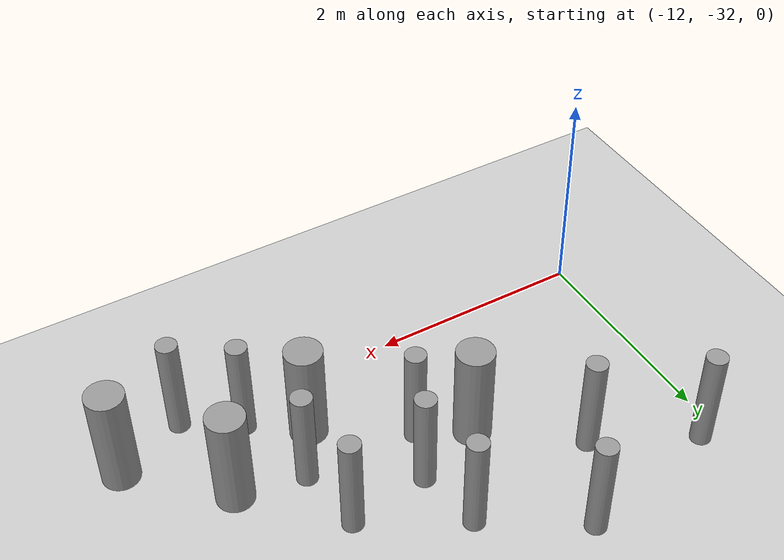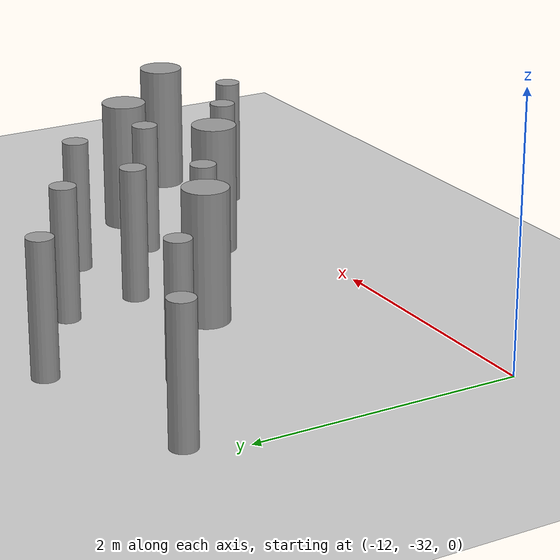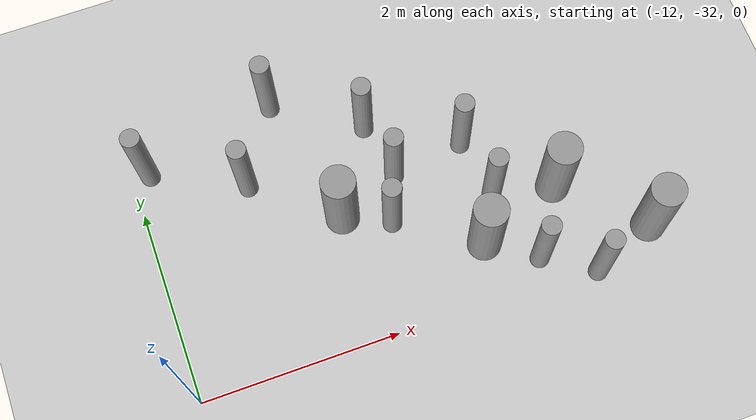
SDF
<sdf version="1.6">
 <world name="default">
  <model name="ground_plane">
   <static>1</static>
   <link name="link">
    <collision name="collision">
     <geometry><plane><normal>0 0 1</normal><size>100 100</size></plane></geometry>
     <surface><friction><ode><mu>100</mu><mu2>50</mu2></ode></friction></surface>
    </collision>
    <visual name="visual">
     <cast_shadows>0</cast_shadows>
     <geometry><plane><normal>0 0 1</normal><size>100 100</size></plane></geometry>
     <material>
      <script><uri>file://media/materials/scripts/gazebo.material</uri><name>Gazebo/Grey</name></script>
     </material>
    </visual>
   </link>
  </model>
  <model name="cyl_wall_clone_clone_1_clone_clone_0_clone_0">
   <link name="link_0">
    <pose>-2.73893 -0.366465 0 0 -0 0</pose>
    <inertial>
     <mass>0.0374993</mass>
     <inertia>
      <ixx>0.00321281</ixx>
      <ixy>0</ixy>
      <ixz>0</ixz>
      <iyy>0.00321281</iyy>
      <iyz>0</iyz>
      <izz>0.000175774</izz>
     </inertia>
    </inertial>
    <visual name="visual">
     <geometry><cylinder><radius>0.0968661</radius><length>1</length></cylinder></geometry>
     <material>
      <lighting>1</lighting>
      <script><uri>file://media/materials/scripts/gazebo.material</uri><name>Gazebo/Grey</name></script>
      <ambient>0.3 0.3 0.3 1</ambient>
      <diffuse>0.7 0.7 0.7 1</diffuse>
      <specular>0.01 0.01 0.01 1</specular>
      <emissive>0 0 0 1</emissive>
     </material>
    </visual>
    <collision name="collision">
     <geometry><cylinder><radius>0.096866</radius><length>1</length></cylinder></geometry>
     <surface>
      <friction>
       <ode><mu>1</mu><mu2>1</mu2><fdir1>0 0 0</fdir1><slip1>0</slip1><slip2>0</slip2></ode>
       <torsional>
        <coefficient>1</coefficient>
        <patch_radius>0</patch_radius>
        <surface_radius>0</surface_radius>
        <use_patch_radius>1</use_patch_radius>
        <ode><slip>0</slip></ode>
       </torsional>
      </friction>
      <bounce><restitution_coefficient>0</restitution_coefficient><threshold>1e+06</threshold></bounce>
      <contact>
       <collide_without_contact>0</collide_without_contact>
       <collide_without_contact_bitmask>1</collide_without_contact_bitmask>
       <collide_bitmask>1</collide_bitmask>
       <ode>
        <soft_cfm>0</soft_cfm>
        <soft_erp>0.2</soft_erp>
        <kp>1e+13</kp>
        <kd>1</kd>
        <max_vel>0.01</max_vel>
        <min_depth>0</min_depth>
       </ode>
       <bullet>
        <split_impulse>1</split_impulse>
        <split_impulse_penetration_threshold>-0.01</split_impulse_penetration_threshold>
        <soft_cfm>0</soft_cfm>
        <soft_erp>0.2</soft_erp>
        <kp>1e+13</kp>
        <kd>1</kd>
       </bullet>
      </contact>
     </surface>
    </collision>
   </link>
   <link name="link_0_clone">
    <pose>-1.73893 0.61877 0 0 -0 0</pose>
    <inertial>
     <mass>0.0374993</mass>
     <inertia>
      <ixx>0.00321281</ixx>
      <ixy>0</ixy>
      <ixz>0</ixz>
      <iyy>0.00321281</iyy>
      <iyz>0</iyz>
      <izz>0.000175774</izz>
     </inertia>
    </inertial>
    <visual name="visual">
     <geometry><cylinder><radius>0.0968661</radius><length>1</length></cylinder></geometry>
     <material>
      <lighting>1</lighting>
      <script><uri>file://media/materials/scripts/gazebo.material</uri><name>Gazebo/Grey</name></script>
      <ambient>0.3 0.3 0.3 1</ambient>
      <diffuse>0.7 0.7 0.7 1</diffuse>
      <specular>0.01 0.01 0.01 1</specular>
      <emissive>0 0 0 1</emissive>
      <shader type="pixel"/>
     </material>
    </visual>
    <collision name="collision">
     <geometry><cylinder><radius>0.096866</radius><length>1</length></cylinder></geometry>
     <surface>
      <friction>
       <ode><mu>1</mu><mu2>1</mu2><fdir1>0 0 0</fdir1><slip1>0</slip1><slip2>0</slip2></ode>
       <torsional>
        <coefficient>1</coefficient>
        <patch_radius>0</patch_radius>
        <surface_radius>0</surface_radius>
        <use_patch_radius>1</use_patch_radius>
        <ode><slip>0</slip></ode>
       </torsional>
      </friction>
      <bounce><restitution_coefficient>0</restitution_coefficient><threshold>1e+06</threshold></bounce>
      <contact>
       <collide_without_contact>0</collide_without_contact>
       <collide_without_contact_bitmask>1</collide_without_contact_bitmask>
       <collide_bitmask>1</collide_bitmask>
       <ode>
        <soft_cfm>0</soft_cfm>
        <soft_erp>0.2</soft_erp>
        <kp>1e+13</kp>
        <kd>1</kd>
        <max_vel>0.01</max_vel>
        <min_depth>0</min_depth>
       </ode>
       <bullet>
        <split_impulse>1</split_impulse>
        <split_impulse_penetration_threshold>-0.01</split_impulse_penetration_threshold>
        <soft_cfm>0</soft_cfm>
        <soft_erp>0.2</soft_erp>
        <kp>1e+13</kp>
        <kd>1</kd>
       </bullet>
      </contact>
     </surface>
    </collision>
   </link>
   <link name="link_0_clone_clone">
    <pose>-0.327073 0.143919 0 0 -0 0</pose>
    <inertial>
     <mass>0.0374993</mass>
     <inertia>
      <ixx>0.00321281</ixx>
      <ixy>0</ixy>
      <ixz>0</ixz>
      <iyy>0.00321281</iyy>
      <iyz>0</iyz>
      <izz>0.000175774</izz>
     </inertia>
    </inertial>
    <visual name="visual">
     <geometry><cylinder><radius>0.0968661</radius><length>1</length></cylinder></geometry>
     <material>
      <lighting>1</lighting>
      <script><uri>file://media/materials/scripts/gazebo.material</uri><name>Gazebo/Grey</name></script>
      <ambient>0.3 0.3 0.3 1</ambient>
      <diffuse>0.7 0.7 0.7 1</diffuse>
      <specular>0.01 0.01 0.01 1</specular>
      <emissive>0 0 0 1</emissive>
      <shader type="pixel"/>
     </material>
    </visual>
    <collision name="collision">
     <geometry><cylinder><radius>0.096866</radius><length>1</length></cylinder></geometry>
     <surface>
      <friction>
       <ode><mu>1</mu><mu2>1</mu2><fdir1>0 0 0</fdir1><slip1>0</slip1><slip2>0</slip2></ode>
       <torsional>
        <coefficient>1</coefficient>
        <patch_radius>0</patch_radius>
        <surface_radius>0</surface_radius>
        <use_patch_radius>1</use_patch_radius>
        <ode><slip>0</slip></ode>
       </torsional>
      </friction>
      <bounce><restitution_coefficient>0</restitution_coefficient><threshold>1e+06</threshold></bounce>
      <contact>
       <collide_without_contact>0</collide_without_contact>
       <collide_without_contact_bitmask>1</collide_without_contact_bitmask>
       <collide_bitmask>1</collide_bitmask>
       <ode>
        <soft_cfm>0</soft_cfm>
        <soft_erp>0.2</soft_erp>
        <kp>1e+13</kp>
        <kd>1</kd>
        <max_vel>0.01</max_vel>
        <min_depth>0</min_depth>
       </ode>
       <bullet>
        <split_impulse>1</split_impulse>
        <split_impulse_penetration_threshold>-0.01</split_impulse_penetration_threshold>
        <soft_cfm>0</soft_cfm>
        <soft_erp>0.2</soft_erp>
        <kp>1e+13</kp>
        <kd>1</kd>
       </bullet>
      </contact>
     </surface>
    </collision>
   </link>
   <link name="link_0_clone_clone_0">
    <pose>1.26107 -0.419359 0 0 -0 0</pose>
    <inertial>
     <mass>0.0374993</mass>
     <inertia>
      <ixx>0.00321281</ixx>
      <ixy>0</ixy>
      <ixz>0</ixz>
      <iyy>0.00321281</iyy>
      <iyz>0</iyz>
      <izz>0.000175774</izz>
     </inertia>
    </inertial>
    <visual name="visual">
     <geometry><cylinder><radius>0.0968661</radius><length>1</length></cylinder></geometry>
     <material>
      <lighting>1</lighting>
      <script><uri>file://media/materials/scripts/gazebo.material</uri><name>Gazebo/Grey</name></script>
      <ambient>0.3 0.3 0.3 1</ambient>
      <diffuse>0.7 0.7 0.7 1</diffuse>
      <specular>0.01 0.01 0.01 1</specular>
      <emissive>0 0 0 1</emissive>
      <shader type="pixel"/>
     </material>
    </visual>
    <collision name="collision">
     <geometry><cylinder><radius>0.096866</radius><length>1</length></cylinder></geometry>
     <surface>
      <friction>
       <ode><mu>1</mu><mu2>1</mu2><fdir1>0 0 0</fdir1><slip1>0</slip1><slip2>0</slip2></ode>
       <torsional>
        <coefficient>1</coefficient>
        <patch_radius>0</patch_radius>
        <surface_radius>0</surface_radius>
        <use_patch_radius>1</use_patch_radius>
        <ode><slip>0</slip></ode>
       </torsional>
      </friction>
      <bounce><restitution_coefficient>0</restitution_coefficient><threshold>1e+06</threshold></bounce>
      <contact>
       <collide_without_contact>0</collide_without_contact>
       <collide_without_contact_bitmask>1</collide_without_contact_bitmask>
       <collide_bitmask>1</collide_bitmask>
       <ode>
        <soft_cfm>0</soft_cfm>
        <soft_erp>0.2</soft_erp>
        <kp>1e+13</kp>
        <kd>1</kd>
        <max_vel>0.01</max_vel>
        <min_depth>0</min_depth>
       </ode>
       <bullet>
        <split_impulse>1</split_impulse>
        <split_impulse_penetration_threshold>-0.01</split_impulse_penetration_threshold>
        <soft_cfm>0</soft_cfm>
        <soft_erp>0.2</soft_erp>
        <kp>1e+13</kp>
        <kd>1</kd>
       </bullet>
      </contact>
     </surface>
    </collision>
   </link>
   <link name="link_0_clone_clone_1">
    <pose>-1.73893 -0.277168 0 0 -0 0</pose>
    <inertial>
     <mass>0.0374993</mass>
     <inertia>
      <ixx>0.00321281</ixx>
      <ixy>0</ixy>
      <ixz>0</ixz>
      <iyy>0.00321281</iyy>
      <iyz>0</iyz>
      <izz>0.000175774</izz>
     </inertia>
    </inertial>
    <visual name="visual">
     <geometry><cylinder><radius>0.0968661</radius><length>1</length></cylinder></geometry>
     <material>
      <lighting>1</lighting>
      <script><uri>file://media/materials/scripts/gazebo.material</uri><name>Gazebo/Grey</name></script>
      <ambient>0.3 0.3 0.3 1</ambient>
      <diffuse>0.7 0.7 0.7 1</diffuse>
      <specular>0.01 0.01 0.01 1</specular>
      <emissive>0 0 0 1</emissive>
      <shader type="pixel"/>
     </material>
    </visual>
    <collision name="collision">
     <geometry><cylinder><radius>0.096866</radius><length>1</length></cylinder></geometry>
     <surface>
      <friction>
       <ode><mu>1</mu><mu2>1</mu2><fdir1>0 0 0</fdir1><slip1>0</slip1><slip2>0</slip2></ode>
       <torsional>
        <coefficient>1</coefficient>
        <patch_radius>0</patch_radius>
        <surface_radius>0</surface_radius>
        <use_patch_radius>1</use_patch_radius>
        <ode><slip>0</slip></ode>
       </torsional>
      </friction>
      <bounce><restitution_coefficient>0</restitution_coefficient><threshold>1e+06</threshold></bounce>
      <contact>
       <collide_without_contact>0</collide_without_contact>
       <collide_without_contact_bitmask>1</collide_without_contact_bitmask>
       <collide_bitmask>1</collide_bitmask>
       <ode>
        <soft_cfm>0</soft_cfm>
        <soft_erp>0.2</soft_erp>
        <kp>1e+13</kp>
        <kd>1</kd>
        <max_vel>0.01</max_vel>
        <min_depth>0</min_depth>
       </ode>
       <bullet>
        <split_impulse>1</split_impulse>
        <split_impulse_penetration_threshold>-0.01</split_impulse_penetration_threshold>
        <soft_cfm>0</soft_cfm>
        <soft_erp>0.2</soft_erp>
        <kp>1e+13</kp>
        <kd>1</kd>
       </bullet>
      </contact>
     </surface>
    </collision>
   </link>
   <link name="link_0_clone_clone_2">
    <pose>-0.738934 0.593961 0 0 -0 0</pose>
    <inertial>
     <mass>0.0374993</mass>
     <inertia>
      <ixx>0.00321281</ixx>
      <ixy>0</ixy>
      <ixz>0</ixz>
      <iyy>0.00321281</iyy>
      <iyz>0</iyz>
      <izz>0.000175774</izz>
     </inertia>
    </inertial>
    <visual name="visual">
     <geometry><cylinder><radius>0.0968661</radius><length>1</length></cylinder></geometry>
     <material>
      <lighting>1</lighting>
      <script><uri>file://media/materials/scripts/gazebo.material</uri><name>Gazebo/Grey</name></script>
      <ambient>0.3 0.3 0.3 1</ambient>
      <diffuse>0.7 0.7 0.7 1</diffuse>
      <specular>0.01 0.01 0.01 1</specular>
      <emissive>0 0 0 1</emissive>
      <shader type="pixel"/>
     </material>
    </visual>
    <collision name="collision">
     <geometry><cylinder><radius>0.096866</radius><length>1</length></cylinder></geometry>
     <surface>
      <friction>
       <ode><mu>1</mu><mu2>1</mu2><fdir1>0 0 0</fdir1><slip1>0</slip1><slip2>0</slip2></ode>
       <torsional>
        <coefficient>1</coefficient>
        <patch_radius>0</patch_radius>
        <surface_radius>0</surface_radius>
        <use_patch_radius>1</use_patch_radius>
        <ode><slip>0</slip></ode>
       </torsional>
      </friction>
      <bounce><restitution_coefficient>0</restitution_coefficient><threshold>1e+06</threshold></bounce>
      <contact>
       <collide_without_contact>0</collide_without_contact>
       <collide_without_contact_bitmask>1</collide_without_contact_bitmask>
       <collide_bitmask>1</collide_bitmask>
       <ode>
        <soft_cfm>0</soft_cfm>
        <soft_erp>0.2</soft_erp>
        <kp>1e+13</kp>
        <kd>1</kd>
        <max_vel>0.01</max_vel>
        <min_depth>0</min_depth>
       </ode>
       <bullet>
        <split_impulse>1</split_impulse>
        <split_impulse_penetration_threshold>-0.01</split_impulse_penetration_threshold>
        <soft_cfm>0</soft_cfm>
        <soft_erp>0.2</soft_erp>
        <kp>1e+13</kp>
        <kd>1</kd>
       </bullet>
      </contact>
     </surface>
    </collision>
   </link>
   <link name="link_0_clone_clone_3">
    <pose>0.261066 0.624849 0 0 -0 0</pose>
    <inertial>
     <mass>0.0374993</mass>
     <inertia>
      <ixx>0.00321281</ixx>
      <ixy>0</ixy>
      <ixz>0</ixz>
      <iyy>0.00321281</iyy>
      <iyz>0</iyz>
      <izz>0.000175774</izz>
     </inertia>
    </inertial>
    <visual name="visual">
     <geometry><cylinder><radius>0.0968661</radius><length>1</length></cylinder></geometry>
     <material>
      <lighting>1</lighting>
      <script><uri>file://media/materials/scripts/gazebo.material</uri><name>Gazebo/Grey</name></script>
      <ambient>0.3 0.3 0.3 1</ambient>
      <diffuse>0.7 0.7 0.7 1</diffuse>
      <specular>0.01 0.01 0.01 1</specular>
      <emissive>0 0 0 1</emissive>
      <shader type="pixel"/>
     </material>
    </visual>
    <collision name="collision">
     <geometry><cylinder><radius>0.096866</radius><length>1</length></cylinder></geometry>
     <surface>
      <friction>
       <ode><mu>1</mu><mu2>1</mu2><fdir1>0 0 0</fdir1><slip1>0</slip1><slip2>0</slip2></ode>
       <torsional>
        <coefficient>1</coefficient>
        <patch_radius>0</patch_radius>
        <surface_radius>0</surface_radius>
        <use_patch_radius>1</use_patch_radius>
        <ode><slip>0</slip></ode>
       </torsional>
      </friction>
      <bounce><restitution_coefficient>0</restitution_coefficient><threshold>1e+06</threshold></bounce>
      <contact>
       <collide_without_contact>0</collide_without_contact>
       <collide_without_contact_bitmask>1</collide_without_contact_bitmask>
       <collide_bitmask>1</collide_bitmask>
       <ode>
        <soft_cfm>0</soft_cfm>
        <soft_erp>0.2</soft_erp>
        <kp>1e+13</kp>
        <kd>1</kd>
        <max_vel>0.01</max_vel>
        <min_depth>0</min_depth>
       </ode>
       <bullet>
        <split_impulse>1</split_impulse>
        <split_impulse_penetration_threshold>-0.01</split_impulse_penetration_threshold>
        <soft_cfm>0</soft_cfm>
        <soft_erp>0.2</soft_erp>
        <kp>1e+13</kp>
        <kd>1</kd>
       </bullet>
      </contact>
     </surface>
    </collision>
   </link>
   <link name="link_0_clone_clone_4">
    <pose>-0.239049 -0.353105 0 0 -0 0</pose>
    <inertial>
     <mass>0.0374993</mass>
     <inertia>
      <ixx>0.00321281</ixx>
      <ixy>0</ixy>
      <ixz>0</ixz>
      <iyy>0.00321281</iyy>
      <iyz>0</iyz>
      <izz>0.000175774</izz>
     </inertia>
    </inertial>
    <visual name="visual">
     <geometry><cylinder><radius>0.0968661</radius><length>1</length></cylinder></geometry>
     <material>
      <lighting>1</lighting>
      <script><uri>file://media/materials/scripts/gazebo.material</uri><name>Gazebo/Grey</name></script>
      <ambient>0.3 0.3 0.3 1</ambient>
      <diffuse>0.7 0.7 0.7 1</diffuse>
      <specular>0.01 0.01 0.01 1</specular>
      <emissive>0 0 0 1</emissive>
      <shader type="pixel"/>
     </material>
    </visual>
    <collision name="collision">
     <geometry><cylinder><radius>0.096866</radius><length>1</length></cylinder></geometry>
     <surface>
      <friction>
       <ode><mu>1</mu><mu2>1</mu2><fdir1>0 0 0</fdir1><slip1>0</slip1><slip2>0</slip2></ode>
       <torsional>
        <coefficient>1</coefficient>
        <patch_radius>0</patch_radius>
        <surface_radius>0</surface_radius>
        <use_patch_radius>1</use_patch_radius>
        <ode><slip>0</slip></ode>
       </torsional>
      </friction>
      <bounce><restitution_coefficient>0</restitution_coefficient><threshold>1e+06</threshold></bounce>
      <contact>
       <collide_without_contact>0</collide_without_contact>
       <collide_without_contact_bitmask>1</collide_without_contact_bitmask>
       <collide_bitmask>1</collide_bitmask>
       <ode>
        <soft_cfm>0</soft_cfm>
        <soft_erp>0.2</soft_erp>
        <kp>1e+13</kp>
        <kd>1</kd>
        <max_vel>0.01</max_vel>
        <min_depth>0</min_depth>
       </ode>
       <bullet>
        <split_impulse>1</split_impulse>
        <split_impulse_penetration_threshold>-0.01</split_impulse_penetration_threshold>
        <soft_cfm>0</soft_cfm>
        <soft_erp>0.2</soft_erp>
        <kp>1e+13</kp>
        <kd>1</kd>
       </bullet>
      </contact>
     </surface>
    </collision>
   </link>
   <link name="link_0_clone_clone_5">
    <pose>0.672792 0.143919 0 0 -0 0</pose>
    <inertial>
     <mass>0.0374993</mass>
     <inertia>
      <ixx>0.00321281</ixx>
      <ixy>0</ixy>
      <ixz>0</ixz>
      <iyy>0.00321281</iyy>
      <iyz>0</iyz>
      <izz>0.000175774</izz>
     </inertia>
    </inertial>
    <visual name="visual">
     <geometry><cylinder><radius>0.0968661</radius><length>1</length></cylinder></geometry>
     <material>
      <lighting>1</lighting>
      <script><uri>file://media/materials/scripts/gazebo.material</uri><name>Gazebo/Grey</name></script>
      <ambient>0.3 0.3 0.3 1</ambient>
      <diffuse>0.7 0.7 0.7 1</diffuse>
      <specular>0.01 0.01 0.01 1</specular>
      <emissive>0 0 0 1</emissive>
      <shader type="pixel"/>
     </material>
    </visual>
    <collision name="collision">
     <geometry><cylinder><radius>0.096866</radius><length>1</length></cylinder></geometry>
     <surface>
      <friction>
       <ode><mu>1</mu><mu2>1</mu2><fdir1>0 0 0</fdir1><slip1>0</slip1><slip2>0</slip2></ode>
       <torsional>
        <coefficient>1</coefficient>
        <patch_radius>0</patch_radius>
        <surface_radius>0</surface_radius>
        <use_patch_radius>1</use_patch_radius>
        <ode><slip>0</slip></ode>
       </torsional>
      </friction>
      <bounce><restitution_coefficient>0</restitution_coefficient><threshold>1e+06</threshold></bounce>
      <contact>
       <collide_without_contact>0</collide_without_contact>
       <collide_without_contact_bitmask>1</collide_without_contact_bitmask>
       <collide_bitmask>1</collide_bitmask>
       <ode>
        <soft_cfm>0</soft_cfm>
        <soft_erp>0.2</soft_erp>
        <kp>1e+13</kp>
        <kd>1</kd>
        <max_vel>0.01</max_vel>
        <min_depth>0</min_depth>
       </ode>
       <bullet>
        <split_impulse>1</split_impulse>
        <split_impulse_penetration_threshold>-0.01</split_impulse_penetration_threshold>
        <soft_cfm>0</soft_cfm>
        <soft_erp>0.2</soft_erp>
        <kp>1e+13</kp>
        <kd>1</kd>
       </bullet>
      </contact>
     </surface>
    </collision>
   </link>
   <link name="link_0_clone_clone_6">
    <pose>1.84596 -0.433423 0 0 -0 0</pose>
    <inertial>
     <mass>0.0374993</mass>
     <inertia>
      <ixx>0.00321281</ixx>
      <ixy>0</ixy>
      <ixz>0</ixz>
      <iyy>0.00321281</iyy>
      <iyz>0</iyz>
      <izz>0.000175774</izz>
     </inertia>
    </inertial>
    <visual name="visual">
     <geometry><cylinder><radius>0.0968661</radius><length>1</length></cylinder></geometry>
     <material>
      <lighting>1</lighting>
      <script><uri>file://media/materials/scripts/gazebo.material</uri><name>Gazebo/Grey</name></script>
      <ambient>0.3 0.3 0.3 1</ambient>
      <diffuse>0.7 0.7 0.7 1</diffuse>
      <specular>0.01 0.01 0.01 1</specular>
      <emissive>0 0 0 1</emissive>
      <shader type="pixel"/>
     </material>
    </visual>
    <collision name="collision">
     <geometry><cylinder><radius>0.096866</radius><length>1</length></cylinder></geometry>
     <surface>
      <friction>
       <ode><mu>1</mu><mu2>1</mu2><fdir1>0 0 0</fdir1><slip1>0</slip1><slip2>0</slip2></ode>
       <torsional>
        <coefficient>1</coefficient>
        <patch_radius>0</patch_radius>
        <surface_radius>0</surface_radius>
        <use_patch_radius>1</use_patch_radius>
        <ode><slip>0</slip></ode>
       </torsional>
      </friction>
      <bounce><restitution_coefficient>0</restitution_coefficient><threshold>1e+06</threshold></bounce>
      <contact>
       <collide_without_contact>0</collide_without_contact>
       <collide_without_contact_bitmask>1</collide_without_contact_bitmask>
       <collide_bitmask>1</collide_bitmask>
       <ode>
        <soft_cfm>0</soft_cfm>
        <soft_erp>0.2</soft_erp>
        <kp>1e+13</kp>
        <kd>1</kd>
        <max_vel>0.01</max_vel>
        <min_depth>0</min_depth>
       </ode>
       <bullet>
        <split_impulse>1</split_impulse>
        <split_impulse_penetration_threshold>-0.01</split_impulse_penetration_threshold>
        <soft_cfm>0</soft_cfm>
        <soft_erp>0.2</soft_erp>
        <kp>1e+13</kp>
        <kd>1</kd>
       </bullet>
      </contact>
     </surface>
    </collision>
   </link>
   <link name="link_1">
    <pose>-0.738934 -0.397931 0 0 -0 0</pose>
    <inertial>
     <mass>0.117398</mass>
     <inertia>
      <ixx>0.0106445</ixx>
      <ixy>0</ixy>
      <ixz>0</ixz>
      <iyy>0.0106445</iyy>
      <iyz>0</iyz>
      <izz>0.00172278</izz>
     </inertia>
    </inertial>
    <visual name="visual">
     <geometry><cylinder><radius>0.171317</radius><length>1</length></cylinder></geometry>
     <material>
      <lighting>1</lighting>
      <script><uri>file://media/materials/scripts/gazebo.material</uri><name>Gazebo/Grey</name></script>
      <ambient>0.3 0.3 0.3 1</ambient>
      <diffuse>0.7 0.7 0.7 1</diffuse>
      <specular>0.01 0.01 0.01 1</specular>
      <emissive>0 0 0 1</emissive>
     </material>
    </visual>
    <collision name="collision">
     <geometry><cylinder><radius>0.171317</radius><length>1</length></cylinder></geometry>
     <surface>
      <friction>
       <ode><mu>1</mu><mu2>1</mu2><fdir1>0 0 0</fdir1><slip1>0</slip1><slip2>0</slip2></ode>
       <torsional>
        <coefficient>1</coefficient>
        <patch_radius>0</patch_radius>
        <surface_radius>0</surface_radius>
        <use_patch_radius>1</use_patch_radius>
        <ode><slip>0</slip></ode>
       </torsional>
      </friction>
      <bounce><restitution_coefficient>0</restitution_coefficient><threshold>1e+06</threshold></bounce>
      <contact>
       <collide_without_contact>0</collide_without_contact>
       <collide_without_contact_bitmask>1</collide_without_contact_bitmask>
       <collide_bitmask>1</collide_bitmask>
       <ode>
        <soft_cfm>0</soft_cfm>
        <soft_erp>0.2</soft_erp>
        <kp>1e+13</kp>
        <kd>1</kd>
        <max_vel>0.01</max_vel>
        <min_depth>0</min_depth>
       </ode>
       <bullet>
        <split_impulse>1</split_impulse>
        <split_impulse_penetration_threshold>-0.01</split_impulse_penetration_threshold>
        <soft_cfm>0</soft_cfm>
        <soft_erp>0.2</soft_erp>
        <kp>1e+13</kp>
        <kd>1</kd>
       </bullet>
      </contact>
     </surface>
    </collision>
   </link>
   <link name="link_1_clone">
    <pose>0.697784 -0.380861 0 0 -0 0</pose>
    <inertial>
     <mass>0.117398</mass>
     <inertia>
      <ixx>0.0106445</ixx>
      <ixy>0</ixy>
      <ixz>0</ixz>
      <iyy>0.0106445</iyy>
      <iyz>0</iyz>
      <izz>0.00172278</izz>
     </inertia>
    </inertial>
    <visual name="visual">
     <geometry><cylinder><radius>0.171317</radius><length>1</length></cylinder></geometry>
     <material>
      <lighting>1</lighting>
      <script><uri>file://media/materials/scripts/gazebo.material</uri><name>Gazebo/Grey</name></script>
      <ambient>0.3 0.3 0.3 1</ambient>
      <diffuse>0.7 0.7 0.7 1</diffuse>
      <specular>0.01 0.01 0.01 1</specular>
      <emissive>0 0 0 1</emissive>
      <shader type="pixel"/>
     </material>
    </visual>
    <collision name="collision">
     <geometry><cylinder><radius>0.171317</radius><length>1</length></cylinder></geometry>
     <surface>
      <friction>
       <ode><mu>1</mu><mu2>1</mu2><fdir1>0 0 0</fdir1><slip1>0</slip1><slip2>0</slip2></ode>
       <torsional>
        <coefficient>1</coefficient>
        <patch_radius>0</patch_radius>
        <surface_radius>0</surface_radius>
        <use_patch_radius>1</use_patch_radius>
        <ode><slip>0</slip></ode>
       </torsional>
      </friction>
      <bounce><restitution_coefficient>0</restitution_coefficient><threshold>1e+06</threshold></bounce>
      <contact>
       <collide_without_contact>0</collide_without_contact>
       <collide_without_contact_bitmask>1</collide_without_contact_bitmask>
       <collide_bitmask>1</collide_bitmask>
       <ode>
        <soft_cfm>0</soft_cfm>
        <soft_erp>0.2</soft_erp>
        <kp>1e+13</kp>
        <kd>1</kd>
        <max_vel>0.01</max_vel>
        <min_depth>0</min_depth>
       </ode>
       <bullet>
        <split_impulse>1</split_impulse>
        <split_impulse_penetration_threshold>-0.01</split_impulse_penetration_threshold>
        <soft_cfm>0</soft_cfm>
        <soft_erp>0.2</soft_erp>
        <kp>1e+13</kp>
        <kd>1</kd>
       </bullet>
      </contact>
     </surface>
    </collision>
   </link>
   <link name="link_1_clone_0">
    <pose>1.26107 0.358974 0 0 -0 0</pose>
    <inertial>
     <mass>0.117398</mass>
     <inertia>
      <ixx>0.0106445</ixx>
      <ixy>0</ixy>
      <ixz>0</ixz>
      <iyy>0.0106445</iyy>
      <iyz>0</iyz>
      <izz>0.00172278</izz>
     </inertia>
    </inertial>
    <visual name="visual">
     <geometry><cylinder><radius>0.171317</radius><length>1</length></cylinder></geometry>
     <material>
      <lighting>1</lighting>
      <script><uri>file://media/materials/scripts/gazebo.material</uri><name>Gazebo/Grey</name></script>
      <ambient>0.3 0.3 0.3 1</ambient>
      <diffuse>0.7 0.7 0.7 1</diffuse>
      <specular>0.01 0.01 0.01 1</specular>
      <emissive>0 0 0 1</emissive>
      <shader type="pixel"/>
     </material>
    </visual>
    <collision name="collision">
     <geometry><cylinder><radius>0.171317</radius><length>1</length></cylinder></geometry>
     <surface>
      <friction>
       <ode><mu>1</mu><mu2>1</mu2><fdir1>0 0 0</fdir1><slip1>0</slip1><slip2>0</slip2></ode>
       <torsional>
        <coefficient>1</coefficient>
        <patch_radius>0</patch_radius>
        <surface_radius>0</surface_radius>
        <use_patch_radius>1</use_patch_radius>
        <ode><slip>0</slip></ode>
       </torsional>
      </friction>
      <bounce><restitution_coefficient>0</restitution_coefficient><threshold>1e+06</threshold></bounce>
      <contact>
       <collide_without_contact>0</collide_without_contact>
       <collide_without_contact_bitmask>1</collide_without_contact_bitmask>
       <collide_bitmask>1</collide_bitmask>
       <ode>
        <soft_cfm>0</soft_cfm>
        <soft_erp>0.2</soft_erp>
        <kp>1e+13</kp>
        <kd>1</kd>
        <max_vel>0.01</max_vel>
        <min_depth>0</min_depth>
       </ode>
       <bullet>
        <split_impulse>1</split_impulse>
        <split_impulse_penetration_threshold>-0.01</split_impulse_penetration_threshold>
        <soft_cfm>0</soft_cfm>
        <soft_erp>0.2</soft_erp>
        <kp>1e+13</kp>
        <kd>1</kd>
       </bullet>
      </contact>
     </surface>
    </collision>
   </link>
   <link name="link_1_clone_1">
    <pose>2.26107 0.143919 0 0 -0 0</pose>
    <inertial>
     <mass>0.117398</mass>
     <inertia>
      <ixx>0.0106445</ixx>
      <ixy>0</ixy>
      <ixz>0</ixz>
      <iyy>0.0106445</iyy>
      <iyz>0</iyz>
      <izz>0.00172278</izz>
     </inertia>
    </inertial>
    <visual name="visual">
     <geometry><cylinder><radius>0.171317</radius><length>1</length></cylinder></geometry>
     <material>
      <lighting>1</lighting>
      <script><uri>file://media/materials/scripts/gazebo.material</uri><name>Gazebo/Grey</name></script>
      <ambient>0.3 0.3 0.3 1</ambient>
      <diffuse>0.7 0.7 0.7 1</diffuse>
      <specular>0.01 0.01 0.01 1</specular>
      <emissive>0 0 0 1</emissive>
      <shader type="pixel"/>
     </material>
    </visual>
    <collision name="collision">
     <geometry><cylinder><radius>0.171317</radius><length>1</length></cylinder></geometry>
     <surface>
      <friction>
       <ode><mu>1</mu><mu2>1</mu2><fdir1>0 0 0</fdir1><slip1>0</slip1><slip2>0</slip2></ode>
       <torsional>
        <coefficient>1</coefficient>
        <patch_radius>0</patch_radius>
        <surface_radius>0</surface_radius>
        <use_patch_radius>1</use_patch_radius>
        <ode><slip>0</slip></ode>
       </torsional>
      </friction>
      <bounce><restitution_coefficient>0</restitution_coefficient><threshold>1e+06</threshold></bounce>
      <contact>
       <collide_without_contact>0</collide_without_contact>
       <collide_without_contact_bitmask>1</collide_without_contact_bitmask>
       <collide_bitmask>1</collide_bitmask>
       <ode>
        <soft_cfm>0</soft_cfm>
        <soft_erp>0.2</soft_erp>
        <kp>1e+13</kp>
        <kd>1</kd>
        <max_vel>0.01</max_vel>
        <min_depth>0</min_depth>
       </ode>
       <bullet>
        <split_impulse>1</split_impulse>
        <split_impulse_penetration_threshold>-0.01</split_impulse_penetration_threshold>
        <soft_cfm>0</soft_cfm>
        <soft_erp>0.2</soft_erp>
        <kp>1e+13</kp>
        <kd>1</kd>
       </bullet>
      </contact>
     </surface>
    </collision>
   </link>
   <static>1</static>
   <pose>-9.29601 -30.7355 0.5 0 0 -0.549185</pose>
  </model>
 </world>
</sdf>
